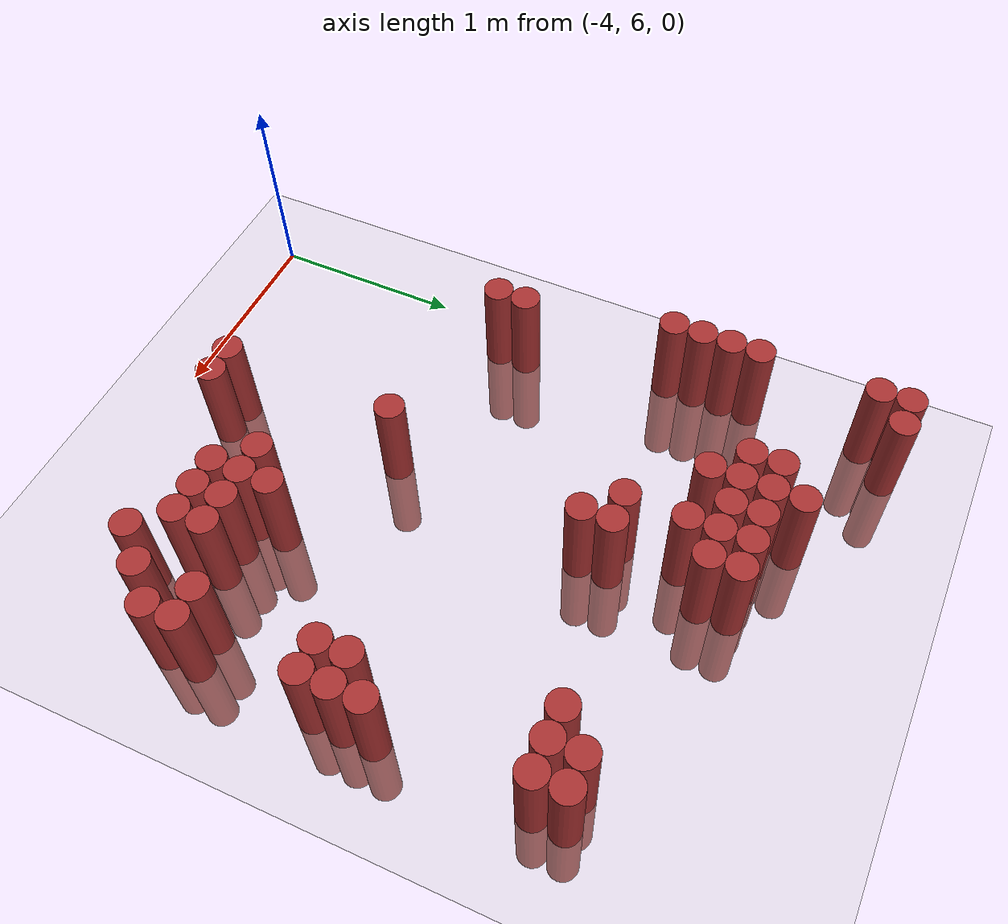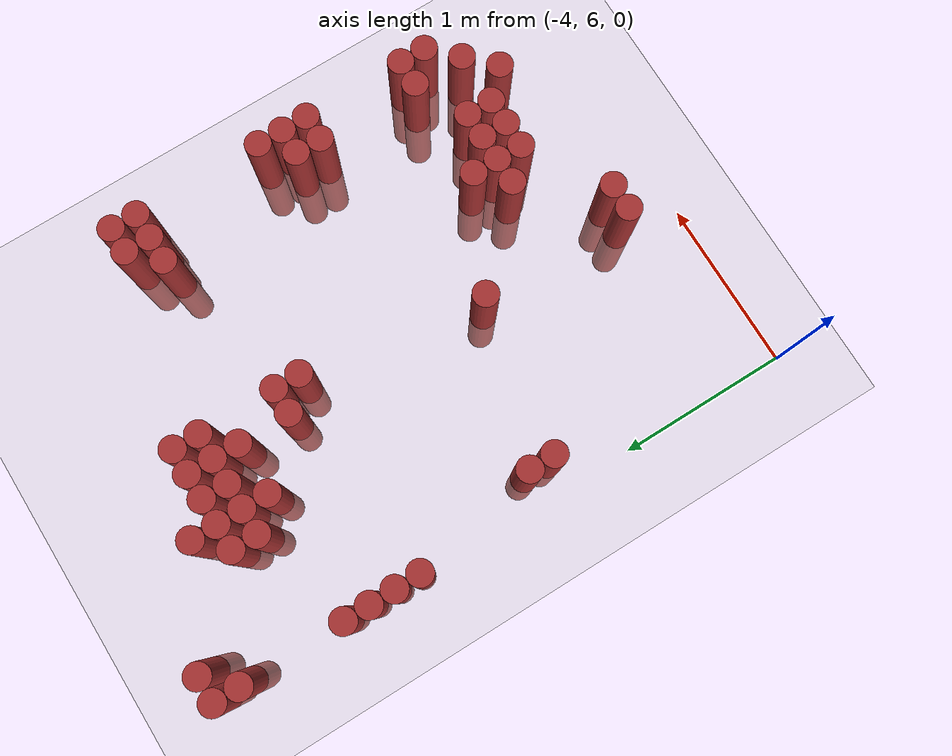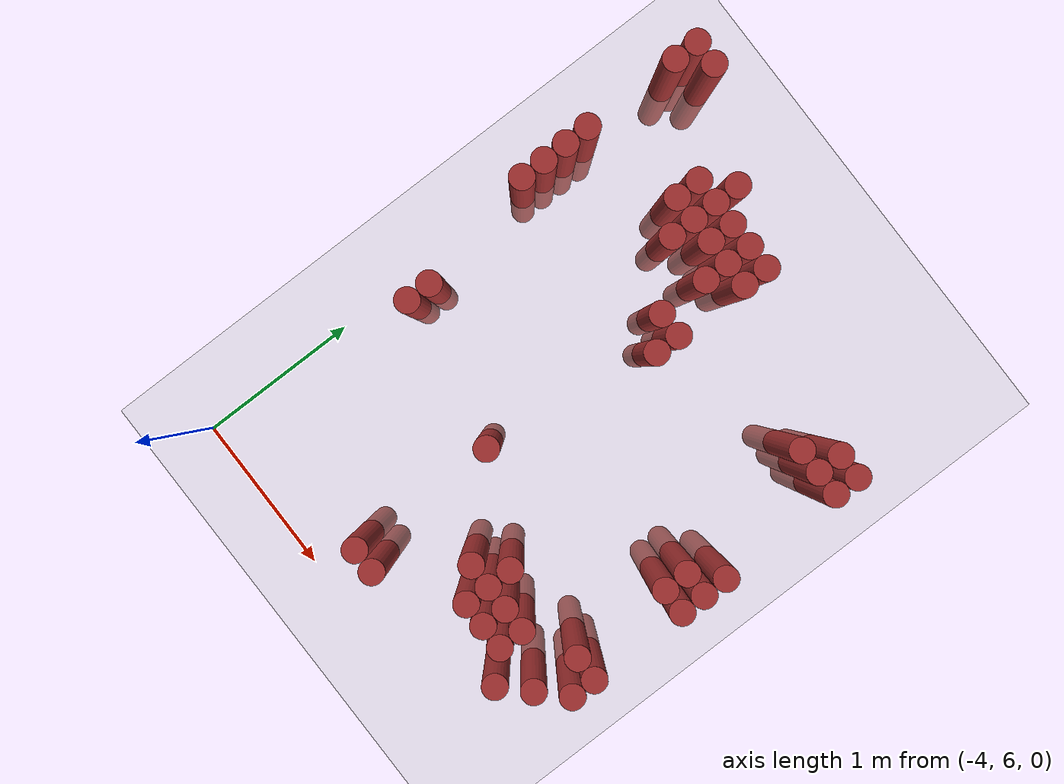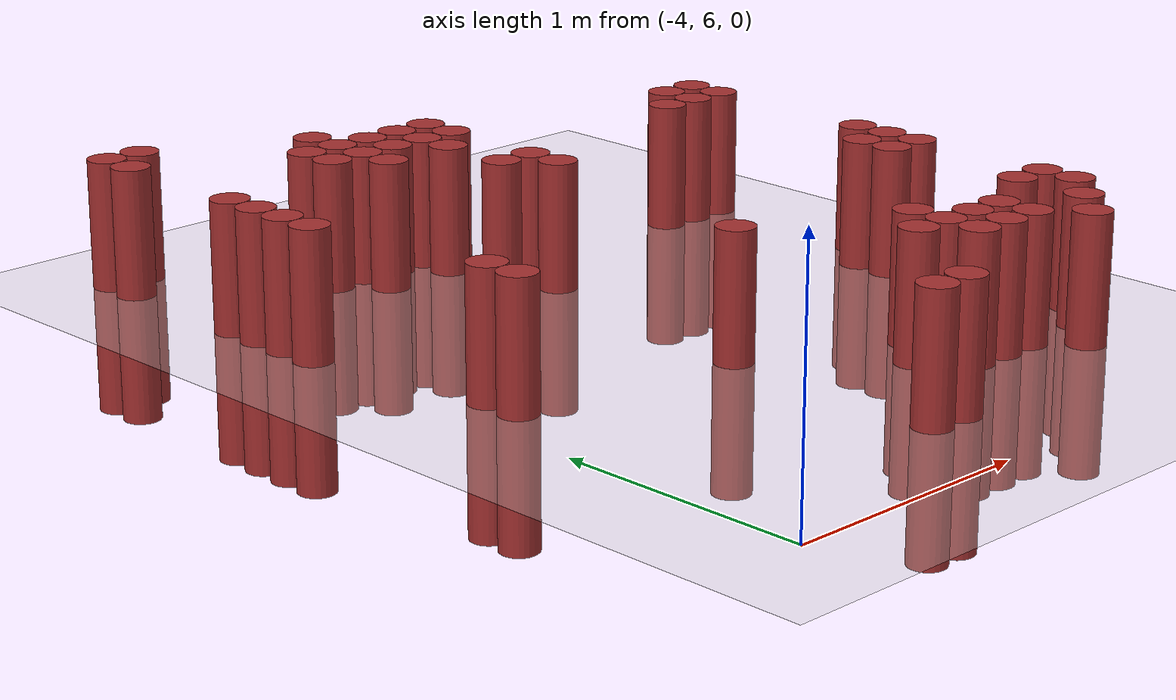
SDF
<sdf version="1.6">
 <world name="default">
  <model name="ground_plane">
   <static>1</static>
   <link name="link">
    <collision name="collision">
     <geometry><plane><normal>0 0 1</normal><size>100 100</size></plane></geometry>
     <surface><friction><ode><mu>100</mu><mu2>50</mu2></ode></friction></surface>
    </collision>
    <visual name="visual">
     <cast_shadows>0</cast_shadows>
     <geometry><plane><normal>0 0 1</normal><size>100 100</size></plane></geometry>
     <material>
      <script><uri>file://media/materials/scripts/gazebo.material</uri><name>Gazebo/Grey</name></script>
     </material>
    </visual>
   </link>
  </model>
  <model name="unit_cylinder_166">
   <static>1</static>
   <pose>-3.975000 8.325000 0.000000 0.000000 0.000000 0.000000</pose>
   <link name="link">
    <inertial>
     <mass>1</mass>
     <inertia><ixx>0.145833</ixx><ixy>0</ixy><ixz>0</ixz><iyy>0.145833</iyy><iyz>0</iyz><izz>0.125</izz></inertia>
    </inertial>
    <collision name="collision">
     <geometry><cylinder><radius>0.075000</radius><length>1</length></cylinder></geometry>
    </collision>
    <visual name="visual">
     <geometry><cylinder><radius>0.075000</radius><length>1</length></cylinder></geometry>
     <material>
      <ambient>0.648000 0.192000 0.192000 1</ambient>
      <diffuse>0.648000 0.192000 0.192000 1</diffuse>
     </material>
     <material>
      <script><name>Gazebo/Grey</name><uri>file://media/materials/scripts/gazebo.material</uri></script>
     </material>
    </visual>
   </link>
  </model>
  <model name="unit_cylinder_167">
   <static>1</static>
   <pose>-3.975000 8.475000 0.000000 0.000000 0.000000 0.000000</pose>
   <link name="link">
    <inertial>
     <mass>1</mass>
     <inertia><ixx>0.145833</ixx><ixy>0</ixy><ixz>0</ixz><iyy>0.145833</iyy><iyz>0</iyz><izz>0.125</izz></inertia>
    </inertial>
    <collision name="collision">
     <geometry><cylinder><radius>0.075000</radius><length>1</length></cylinder></geometry>
    </collision>
    <visual name="visual">
     <geometry><cylinder><radius>0.075000</radius><length>1</length></cylinder></geometry>
     <material>
      <ambient>0.648000 0.192000 0.192000 1</ambient>
      <diffuse>0.648000 0.192000 0.192000 1</diffuse>
     </material>
     <material>
      <script><name>Gazebo/Grey</name><uri>file://media/materials/scripts/gazebo.material</uri></script>
     </material>
    </visual>
   </link>
  </model>
  <model name="unit_cylinder_168">
   <static>1</static>
   <pose>-3.975000 8.625000 0.000000 0.000000 0.000000 0.000000</pose>
   <link name="link">
    <inertial>
     <mass>1</mass>
     <inertia><ixx>0.145833</ixx><ixy>0</ixy><ixz>0</ixz><iyy>0.145833</iyy><iyz>0</iyz><izz>0.125</izz></inertia>
    </inertial>
    <collision name="collision">
     <geometry><cylinder><radius>0.075000</radius><length>1</length></cylinder></geometry>
    </collision>
    <visual name="visual">
     <geometry><cylinder><radius>0.075000</radius><length>1</length></cylinder></geometry>
     <material>
      <ambient>0.648000 0.192000 0.192000 1</ambient>
      <diffuse>0.648000 0.192000 0.192000 1</diffuse>
     </material>
     <material>
      <script><name>Gazebo/Grey</name><uri>file://media/materials/scripts/gazebo.material</uri></script>
     </material>
    </visual>
   </link>
  </model>
  <model name="unit_cylinder_169">
   <static>1</static>
   <pose>-3.975000 8.775000 0.000000 0.000000 0.000000 0.000000</pose>
   <link name="link">
    <inertial>
     <mass>1</mass>
     <inertia><ixx>0.145833</ixx><ixy>0</ixy><ixz>0</ixz><iyy>0.145833</iyy><iyz>0</iyz><izz>0.125</izz></inertia>
    </inertial>
    <collision name="collision">
     <geometry><cylinder><radius>0.075000</radius><length>1</length></cylinder></geometry>
    </collision>
    <visual name="visual">
     <geometry><cylinder><radius>0.075000</radius><length>1</length></cylinder></geometry>
     <material>
      <ambient>0.648000 0.192000 0.192000 1</ambient>
      <diffuse>0.648000 0.192000 0.192000 1</diffuse>
     </material>
     <material>
      <script><name>Gazebo/Grey</name><uri>file://media/materials/scripts/gazebo.material</uri></script>
     </material>
    </visual>
   </link>
  </model>
  <model name="unit_cylinder_170">
   <static>1</static>
   <pose>-3.975000 9.375000 0.000000 0.000000 0.000000 0.000000</pose>
   <link name="link">
    <inertial>
     <mass>1</mass>
     <inertia><ixx>0.145833</ixx><ixy>0</ixy><ixz>0</ixz><iyy>0.145833</iyy><iyz>0</iyz><izz>0.125</izz></inertia>
    </inertial>
    <collision name="collision">
     <geometry><cylinder><radius>0.075000</radius><length>1</length></cylinder></geometry>
    </collision>
    <visual name="visual">
     <geometry><cylinder><radius>0.075000</radius><length>1</length></cylinder></geometry>
     <material>
      <ambient>0.648000 0.192000 0.192000 1</ambient>
      <diffuse>0.648000 0.192000 0.192000 1</diffuse>
     </material>
     <material>
      <script><name>Gazebo/Grey</name><uri>file://media/materials/scripts/gazebo.material</uri></script>
     </material>
    </visual>
   </link>
  </model>
  <model name="unit_cylinder_171">
   <static>1</static>
   <pose>-3.975000 9.525000 0.000000 0.000000 0.000000 0.000000</pose>
   <link name="link">
    <inertial>
     <mass>1</mass>
     <inertia><ixx>0.145833</ixx><ixy>0</ixy><ixz>0</ixz><iyy>0.145833</iyy><iyz>0</iyz><izz>0.125</izz></inertia>
    </inertial>
    <collision name="collision">
     <geometry><cylinder><radius>0.075000</radius><length>1</length></cylinder></geometry>
    </collision>
    <visual name="visual">
     <geometry><cylinder><radius>0.075000</radius><length>1</length></cylinder></geometry>
     <material>
      <ambient>0.648000 0.192000 0.192000 1</ambient>
      <diffuse>0.648000 0.192000 0.192000 1</diffuse>
     </material>
     <material>
      <script><name>Gazebo/Grey</name><uri>file://media/materials/scripts/gazebo.material</uri></script>
     </material>
    </visual>
   </link>
  </model>
  <model name="unit_cylinder_172">
   <static>1</static>
   <pose>-3.825000 7.425000 0.000000 0.000000 0.000000 0.000000</pose>
   <link name="link">
    <inertial>
     <mass>1</mass>
     <inertia><ixx>0.145833</ixx><ixy>0</ixy><ixz>0</ixz><iyy>0.145833</iyy><iyz>0</iyz><izz>0.125</izz></inertia>
    </inertial>
    <collision name="collision">
     <geometry><cylinder><radius>0.075000</radius><length>1</length></cylinder></geometry>
    </collision>
    <visual name="visual">
     <geometry><cylinder><radius>0.075000</radius><length>1</length></cylinder></geometry>
     <material>
      <ambient>0.648000 0.192000 0.192000 1</ambient>
      <diffuse>0.648000 0.192000 0.192000 1</diffuse>
     </material>
     <material>
      <script><name>Gazebo/Grey</name><uri>file://media/materials/scripts/gazebo.material</uri></script>
     </material>
    </visual>
   </link>
  </model>
  <model name="unit_cylinder_173">
   <static>1</static>
   <pose>-3.825000 7.575000 0.000000 0.000000 0.000000 0.000000</pose>
   <link name="link">
    <inertial>
     <mass>1</mass>
     <inertia><ixx>0.145833</ixx><ixy>0</ixy><ixz>0</ixz><iyy>0.145833</iyy><iyz>0</iyz><izz>0.125</izz></inertia>
    </inertial>
    <collision name="collision">
     <geometry><cylinder><radius>0.075000</radius><length>1</length></cylinder></geometry>
    </collision>
    <visual name="visual">
     <geometry><cylinder><radius>0.075000</radius><length>1</length></cylinder></geometry>
     <material>
      <ambient>0.648000 0.192000 0.192000 1</ambient>
      <diffuse>0.648000 0.192000 0.192000 1</diffuse>
     </material>
     <material>
      <script><name>Gazebo/Grey</name><uri>file://media/materials/scripts/gazebo.material</uri></script>
     </material>
    </visual>
   </link>
  </model>
  <model name="unit_cylinder_174">
   <static>1</static>
   <pose>-3.825000 9.525000 0.000000 0.000000 0.000000 0.000000</pose>
   <link name="link">
    <inertial>
     <mass>1</mass>
     <inertia><ixx>0.145833</ixx><ixy>0</ixy><ixz>0</ixz><iyy>0.145833</iyy><iyz>0</iyz><izz>0.125</izz></inertia>
    </inertial>
    <collision name="collision">
     <geometry><cylinder><radius>0.075000</radius><length>1</length></cylinder></geometry>
    </collision>
    <visual name="visual">
     <geometry><cylinder><radius>0.075000</radius><length>1</length></cylinder></geometry>
     <material>
      <ambient>0.648000 0.192000 0.192000 1</ambient>
      <diffuse>0.648000 0.192000 0.192000 1</diffuse>
     </material>
     <material>
      <script><name>Gazebo/Grey</name><uri>file://media/materials/scripts/gazebo.material</uri></script>
     </material>
    </visual>
   </link>
  </model>
  <model name="unit_cylinder_175">
   <static>1</static>
   <pose>-3.375000 8.925000 0.000000 0.000000 0.000000 0.000000</pose>
   <link name="link">
    <inertial>
     <mass>1</mass>
     <inertia><ixx>0.145833</ixx><ixy>0</ixy><ixz>0</ixz><iyy>0.145833</iyy><iyz>0</iyz><izz>0.125</izz></inertia>
    </inertial>
    <collision name="collision">
     <geometry><cylinder><radius>0.075000</radius><length>1</length></cylinder></geometry>
    </collision>
    <visual name="visual">
     <geometry><cylinder><radius>0.075000</radius><length>1</length></cylinder></geometry>
     <material>
      <ambient>0.648000 0.192000 0.192000 1</ambient>
      <diffuse>0.648000 0.192000 0.192000 1</diffuse>
     </material>
     <material>
      <script><name>Gazebo/Grey</name><uri>file://media/materials/scripts/gazebo.material</uri></script>
     </material>
    </visual>
   </link>
  </model>
  <model name="unit_cylinder_176">
   <static>1</static>
   <pose>-3.375000 9.075000 0.000000 0.000000 0.000000 0.000000</pose>
   <link name="link">
    <inertial>
     <mass>1</mass>
     <inertia><ixx>0.145833</ixx><ixy>0</ixy><ixz>0</ixz><iyy>0.145833</iyy><iyz>0</iyz><izz>0.125</izz></inertia>
    </inertial>
    <collision name="collision">
     <geometry><cylinder><radius>0.075000</radius><length>1</length></cylinder></geometry>
    </collision>
    <visual name="visual">
     <geometry><cylinder><radius>0.075000</radius><length>1</length></cylinder></geometry>
     <material>
      <ambient>0.648000 0.192000 0.192000 1</ambient>
      <diffuse>0.648000 0.192000 0.192000 1</diffuse>
     </material>
     <material>
      <script><name>Gazebo/Grey</name><uri>file://media/materials/scripts/gazebo.material</uri></script>
     </material>
    </visual>
   </link>
  </model>
  <model name="unit_cylinder_177">
   <static>1</static>
   <pose>-3.225000 8.775000 0.000000 0.000000 0.000000 0.000000</pose>
   <link name="link">
    <inertial>
     <mass>1</mass>
     <inertia><ixx>0.145833</ixx><ixy>0</ixy><ixz>0</ixz><iyy>0.145833</iyy><iyz>0</iyz><izz>0.125</izz></inertia>
    </inertial>
    <collision name="collision">
     <geometry><cylinder><radius>0.075000</radius><length>1</length></cylinder></geometry>
    </collision>
    <visual name="visual">
     <geometry><cylinder><radius>0.075000</radius><length>1</length></cylinder></geometry>
     <material>
      <ambient>0.648000 0.192000 0.192000 1</ambient>
      <diffuse>0.648000 0.192000 0.192000 1</diffuse>
     </material>
     <material>
      <script><name>Gazebo/Grey</name><uri>file://media/materials/scripts/gazebo.material</uri></script>
     </material>
    </visual>
   </link>
  </model>
  <model name="unit_cylinder_178">
   <static>1</static>
   <pose>-3.225000 8.925000 0.000000 0.000000 0.000000 0.000000</pose>
   <link name="link">
    <inertial>
     <mass>1</mass>
     <inertia><ixx>0.145833</ixx><ixy>0</ixy><ixz>0</ixz><iyy>0.145833</iyy><iyz>0</iyz><izz>0.125</izz></inertia>
    </inertial>
    <collision name="collision">
     <geometry><cylinder><radius>0.075000</radius><length>1</length></cylinder></geometry>
    </collision>
    <visual name="visual">
     <geometry><cylinder><radius>0.075000</radius><length>1</length></cylinder></geometry>
     <material>
      <ambient>0.648000 0.192000 0.192000 1</ambient>
      <diffuse>0.648000 0.192000 0.192000 1</diffuse>
     </material>
     <material>
      <script><name>Gazebo/Grey</name><uri>file://media/materials/scripts/gazebo.material</uri></script>
     </material>
    </visual>
   </link>
  </model>
  <model name="unit_cylinder_179">
   <static>1</static>
   <pose>-3.225000 9.075000 0.000000 0.000000 0.000000 0.000000</pose>
   <link name="link">
    <inertial>
     <mass>1</mass>
     <inertia><ixx>0.145833</ixx><ixy>0</ixy><ixz>0</ixz><iyy>0.145833</iyy><iyz>0</iyz><izz>0.125</izz></inertia>
    </inertial>
    <collision name="collision">
     <geometry><cylinder><radius>0.075000</radius><length>1</length></cylinder></geometry>
    </collision>
    <visual name="visual">
     <geometry><cylinder><radius>0.075000</radius><length>1</length></cylinder></geometry>
     <material>
      <ambient>0.648000 0.192000 0.192000 1</ambient>
      <diffuse>0.648000 0.192000 0.192000 1</diffuse>
     </material>
     <material>
      <script><name>Gazebo/Grey</name><uri>file://media/materials/scripts/gazebo.material</uri></script>
     </material>
    </visual>
   </link>
  </model>
  <model name="unit_cylinder_180">
   <static>1</static>
   <pose>-3.225000 9.225000 0.000000 0.000000 0.000000 0.000000</pose>
   <link name="link">
    <inertial>
     <mass>1</mass>
     <inertia><ixx>0.145833</ixx><ixy>0</ixy><ixz>0</ixz><iyy>0.145833</iyy><iyz>0</iyz><izz>0.125</izz></inertia>
    </inertial>
    <collision name="collision">
     <geometry><cylinder><radius>0.075000</radius><length>1</length></cylinder></geometry>
    </collision>
    <visual name="visual">
     <geometry><cylinder><radius>0.075000</radius><length>1</length></cylinder></geometry>
     <material>
      <ambient>0.648000 0.192000 0.192000 1</ambient>
      <diffuse>0.648000 0.192000 0.192000 1</diffuse>
     </material>
     <material>
      <script><name>Gazebo/Grey</name><uri>file://media/materials/scripts/gazebo.material</uri></script>
     </material>
    </visual>
   </link>
  </model>
  <model name="unit_cylinder_182">
   <static>1</static>
   <pose>-3.075000 8.925000 0.000000 0.000000 0.000000 0.000000</pose>
   <link name="link">
    <inertial>
     <mass>1</mass>
     <inertia><ixx>0.145833</ixx><ixy>0</ixy><ixz>0</ixz><iyy>0.145833</iyy><iyz>0</iyz><izz>0.125</izz></inertia>
    </inertial>
    <collision name="collision">
     <geometry><cylinder><radius>0.075000</radius><length>1</length></cylinder></geometry>
    </collision>
    <visual name="visual">
     <geometry><cylinder><radius>0.075000</radius><length>1</length></cylinder></geometry>
     <material>
      <ambient>0.648000 0.192000 0.192000 1</ambient>
      <diffuse>0.648000 0.192000 0.192000 1</diffuse>
     </material>
     <material>
      <script><name>Gazebo/Grey</name><uri>file://media/materials/scripts/gazebo.material</uri></script>
     </material>
    </visual>
   </link>
  </model>
  <model name="unit_cylinder_183">
   <static>1</static>
   <pose>-3.075000 9.075000 0.000000 0.000000 0.000000 0.000000</pose>
   <link name="link">
    <inertial>
     <mass>1</mass>
     <inertia><ixx>0.145833</ixx><ixy>0</ixy><ixz>0</ixz><iyy>0.145833</iyy><iyz>0</iyz><izz>0.125</izz></inertia>
    </inertial>
    <collision name="collision">
     <geometry><cylinder><radius>0.075000</radius><length>1</length></cylinder></geometry>
    </collision>
    <visual name="visual">
     <geometry><cylinder><radius>0.075000</radius><length>1</length></cylinder></geometry>
     <material>
      <ambient>0.648000 0.192000 0.192000 1</ambient>
      <diffuse>0.648000 0.192000 0.192000 1</diffuse>
     </material>
     <material>
      <script><name>Gazebo/Grey</name><uri>file://media/materials/scripts/gazebo.material</uri></script>
     </material>
    </visual>
   </link>
  </model>
  <model name="unit_cylinder_188">
   <static>1</static>
   <pose>-2.925000 6.375000 0.000000 0.000000 0.000000 0.000000</pose>
   <link name="link">
    <inertial>
     <mass>1</mass>
     <inertia><ixx>0.145833</ixx><ixy>0</ixy><ixz>0</ixz><iyy>0.145833</iyy><iyz>0</iyz><izz>0.125</izz></inertia>
    </inertial>
    <collision name="collision">
     <geometry><cylinder><radius>0.075000</radius><length>1</length></cylinder></geometry>
    </collision>
    <visual name="visual">
     <geometry><cylinder><radius>0.075000</radius><length>1</length></cylinder></geometry>
     <material>
      <ambient>0.648000 0.192000 0.192000 1</ambient>
      <diffuse>0.648000 0.192000 0.192000 1</diffuse>
     </material>
     <material>
      <script><name>Gazebo/Grey</name><uri>file://media/materials/scripts/gazebo.material</uri></script>
     </material>
    </visual>
   </link>
  </model>
  <model name="unit_cylinder_189">
   <static>1</static>
   <pose>-2.925000 7.275000 0.000000 0.000000 0.000000 0.000000</pose>
   <link name="link">
    <inertial>
     <mass>1</mass>
     <inertia><ixx>0.145833</ixx><ixy>0</ixy><ixz>0</ixz><iyy>0.145833</iyy><iyz>0</iyz><izz>0.125</izz></inertia>
    </inertial>
    <collision name="collision">
     <geometry><cylinder><radius>0.075000</radius><length>1</length></cylinder></geometry>
    </collision>
    <visual name="visual">
     <geometry><cylinder><radius>0.075000</radius><length>1</length></cylinder></geometry>
     <material>
      <ambient>0.648000 0.192000 0.192000 1</ambient>
      <diffuse>0.648000 0.192000 0.192000 1</diffuse>
     </material>
     <material>
      <script><name>Gazebo/Grey</name><uri>file://media/materials/scripts/gazebo.material</uri></script>
     </material>
    </visual>
   </link>
  </model>
  <model name="unit_cylinder_190">
   <static>1</static>
   <pose>-2.925000 8.475000 0.000000 0.000000 0.000000 0.000000</pose>
   <link name="link">
    <inertial>
     <mass>1</mass>
     <inertia><ixx>0.145833</ixx><ixy>0</ixy><ixz>0</ixz><iyy>0.145833</iyy><iyz>0</iyz><izz>0.125</izz></inertia>
    </inertial>
    <collision name="collision">
     <geometry><cylinder><radius>0.075000</radius><length>1</length></cylinder></geometry>
    </collision>
    <visual name="visual">
     <geometry><cylinder><radius>0.075000</radius><length>1</length></cylinder></geometry>
     <material>
      <ambient>0.648000 0.192000 0.192000 1</ambient>
      <diffuse>0.648000 0.192000 0.192000 1</diffuse>
     </material>
     <material>
      <script><name>Gazebo/Grey</name><uri>file://media/materials/scripts/gazebo.material</uri></script>
     </material>
    </visual>
   </link>
  </model>
  <model name="unit_cylinder_191">
   <static>1</static>
   <pose>-2.925000 8.775000 0.000000 0.000000 0.000000 0.000000</pose>
   <link name="link">
    <inertial>
     <mass>1</mass>
     <inertia><ixx>0.145833</ixx><ixy>0</ixy><ixz>0</ixz><iyy>0.145833</iyy><iyz>0</iyz><izz>0.125</izz></inertia>
    </inertial>
    <collision name="collision">
     <geometry><cylinder><radius>0.075000</radius><length>1</length></cylinder></geometry>
    </collision>
    <visual name="visual">
     <geometry><cylinder><radius>0.075000</radius><length>1</length></cylinder></geometry>
     <material>
      <ambient>0.648000 0.192000 0.192000 1</ambient>
      <diffuse>0.648000 0.192000 0.192000 1</diffuse>
     </material>
     <material>
      <script><name>Gazebo/Grey</name><uri>file://media/materials/scripts/gazebo.material</uri></script>
     </material>
    </visual>
   </link>
  </model>
  <model name="unit_cylinder_192">
   <static>1</static>
   <pose>-2.925000 8.925000 0.000000 0.000000 0.000000 0.000000</pose>
   <link name="link">
    <inertial>
     <mass>1</mass>
     <inertia><ixx>0.145833</ixx><ixy>0</ixy><ixz>0</ixz><iyy>0.145833</iyy><iyz>0</iyz><izz>0.125</izz></inertia>
    </inertial>
    <collision name="collision">
     <geometry><cylinder><radius>0.075000</radius><length>1</length></cylinder></geometry>
    </collision>
    <visual name="visual">
     <geometry><cylinder><radius>0.075000</radius><length>1</length></cylinder></geometry>
     <material>
      <ambient>0.648000 0.192000 0.192000 1</ambient>
      <diffuse>0.648000 0.192000 0.192000 1</diffuse>
     </material>
     <material>
      <script><name>Gazebo/Grey</name><uri>file://media/materials/scripts/gazebo.material</uri></script>
     </material>
    </visual>
   </link>
  </model>
  <model name="unit_cylinder_193">
   <static>1</static>
   <pose>-2.925000 9.075000 0.000000 0.000000 0.000000 0.000000</pose>
   <link name="link">
    <inertial>
     <mass>1</mass>
     <inertia><ixx>0.145833</ixx><ixy>0</ixy><ixz>0</ixz><iyy>0.145833</iyy><iyz>0</iyz><izz>0.125</izz></inertia>
    </inertial>
    <collision name="collision">
     <geometry><cylinder><radius>0.075000</radius><length>1</length></cylinder></geometry>
    </collision>
    <visual name="visual">
     <geometry><cylinder><radius>0.075000</radius><length>1</length></cylinder></geometry>
     <material>
      <ambient>0.648000 0.192000 0.192000 1</ambient>
      <diffuse>0.648000 0.192000 0.192000 1</diffuse>
     </material>
     <material>
      <script><name>Gazebo/Grey</name><uri>file://media/materials/scripts/gazebo.material</uri></script>
     </material>
    </visual>
   </link>
  </model>
  <model name="unit_cylinder_198">
   <static>1</static>
   <pose>-2.775000 6.375000 0.000000 0.000000 0.000000 0.000000</pose>
   <link name="link">
    <inertial>
     <mass>1</mass>
     <inertia><ixx>0.145833</ixx><ixy>0</ixy><ixz>0</ixz><iyy>0.145833</iyy><iyz>0</iyz><izz>0.125</izz></inertia>
    </inertial>
    <collision name="collision">
     <geometry><cylinder><radius>0.075000</radius><length>1</length></cylinder></geometry>
    </collision>
    <visual name="visual">
     <geometry><cylinder><radius>0.075000</radius><length>1</length></cylinder></geometry>
     <material>
      <ambient>0.648000 0.192000 0.192000 1</ambient>
      <diffuse>0.648000 0.192000 0.192000 1</diffuse>
     </material>
     <material>
      <script><name>Gazebo/Grey</name><uri>file://media/materials/scripts/gazebo.material</uri></script>
     </material>
    </visual>
   </link>
  </model>
  <model name="unit_cylinder_199">
   <static>1</static>
   <pose>-2.775000 8.325000 0.000000 0.000000 0.000000 0.000000</pose>
   <link name="link">
    <inertial>
     <mass>1</mass>
     <inertia><ixx>0.145833</ixx><ixy>0</ixy><ixz>0</ixz><iyy>0.145833</iyy><iyz>0</iyz><izz>0.125</izz></inertia>
    </inertial>
    <collision name="collision">
     <geometry><cylinder><radius>0.075000</radius><length>1</length></cylinder></geometry>
    </collision>
    <visual name="visual">
     <geometry><cylinder><radius>0.075000</radius><length>1</length></cylinder></geometry>
     <material>
      <ambient>0.648000 0.192000 0.192000 1</ambient>
      <diffuse>0.648000 0.192000 0.192000 1</diffuse>
     </material>
     <material>
      <script><name>Gazebo/Grey</name><uri>file://media/materials/scripts/gazebo.material</uri></script>
     </material>
    </visual>
   </link>
  </model>
  <model name="unit_cylinder_200">
   <static>1</static>
   <pose>-2.775000 8.475000 0.000000 0.000000 0.000000 0.000000</pose>
   <link name="link">
    <inertial>
     <mass>1</mass>
     <inertia><ixx>0.145833</ixx><ixy>0</ixy><ixz>0</ixz><iyy>0.145833</iyy><iyz>0</iyz><izz>0.125</izz></inertia>
    </inertial>
    <collision name="collision">
     <geometry><cylinder><radius>0.075000</radius><length>1</length></cylinder></geometry>
    </collision>
    <visual name="visual">
     <geometry><cylinder><radius>0.075000</radius><length>1</length></cylinder></geometry>
     <material>
      <ambient>0.648000 0.192000 0.192000 1</ambient>
      <diffuse>0.648000 0.192000 0.192000 1</diffuse>
     </material>
     <material>
      <script><name>Gazebo/Grey</name><uri>file://media/materials/scripts/gazebo.material</uri></script>
     </material>
    </visual>
   </link>
  </model>
  <model name="unit_cylinder_201">
   <static>1</static>
   <pose>-2.775000 8.925000 0.000000 0.000000 0.000000 0.000000</pose>
   <link name="link">
    <inertial>
     <mass>1</mass>
     <inertia><ixx>0.145833</ixx><ixy>0</ixy><ixz>0</ixz><iyy>0.145833</iyy><iyz>0</iyz><izz>0.125</izz></inertia>
    </inertial>
    <collision name="collision">
     <geometry><cylinder><radius>0.075000</radius><length>1</length></cylinder></geometry>
    </collision>
    <visual name="visual">
     <geometry><cylinder><radius>0.075000</radius><length>1</length></cylinder></geometry>
     <material>
      <ambient>0.648000 0.192000 0.192000 1</ambient>
      <diffuse>0.648000 0.192000 0.192000 1</diffuse>
     </material>
     <material>
      <script><name>Gazebo/Grey</name><uri>file://media/materials/scripts/gazebo.material</uri></script>
     </material>
    </visual>
   </link>
  </model>
  <model name="unit_cylinder_202">
   <static>1</static>
   <pose>-2.775000 9.075000 0.000000 0.000000 0.000000 0.000000</pose>
   <link name="link">
    <inertial>
     <mass>1</mass>
     <inertia><ixx>0.145833</ixx><ixy>0</ixy><ixz>0</ixz><iyy>0.145833</iyy><iyz>0</iyz><izz>0.125</izz></inertia>
    </inertial>
    <collision name="collision">
     <geometry><cylinder><radius>0.075000</radius><length>1</length></cylinder></geometry>
    </collision>
    <visual name="visual">
     <geometry><cylinder><radius>0.075000</radius><length>1</length></cylinder></geometry>
     <material>
      <ambient>0.648000 0.192000 0.192000 1</ambient>
      <diffuse>0.648000 0.192000 0.192000 1</diffuse>
     </material>
     <material>
      <script><name>Gazebo/Grey</name><uri>file://media/materials/scripts/gazebo.material</uri></script>
     </material>
    </visual>
   </link>
  </model>
  <model name="unit_cylinder_205">
   <static>1</static>
   <pose>-2.475000 6.825000 0.000000 0.000000 0.000000 0.000000</pose>
   <link name="link">
    <inertial>
     <mass>1</mass>
     <inertia><ixx>0.145833</ixx><ixy>0</ixy><ixz>0</ixz><iyy>0.145833</iyy><iyz>0</iyz><izz>0.125</izz></inertia>
    </inertial>
    <collision name="collision">
     <geometry><cylinder><radius>0.075000</radius><length>1</length></cylinder></geometry>
    </collision>
    <visual name="visual">
     <geometry><cylinder><radius>0.075000</radius><length>1</length></cylinder></geometry>
     <material>
      <ambient>0.648000 0.192000 0.192000 1</ambient>
      <diffuse>0.648000 0.192000 0.192000 1</diffuse>
     </material>
     <material>
      <script><name>Gazebo/Grey</name><uri>file://media/materials/scripts/gazebo.material</uri></script>
     </material>
    </visual>
   </link>
  </model>
  <model name="unit_cylinder_208">
   <static>1</static>
   <pose>-2.325000 6.675000 0.000000 0.000000 0.000000 0.000000</pose>
   <link name="link">
    <inertial>
     <mass>1</mass>
     <inertia><ixx>0.145833</ixx><ixy>0</ixy><ixz>0</ixz><iyy>0.145833</iyy><iyz>0</iyz><izz>0.125</izz></inertia>
    </inertial>
    <collision name="collision">
     <geometry><cylinder><radius>0.075000</radius><length>1</length></cylinder></geometry>
    </collision>
    <visual name="visual">
     <geometry><cylinder><radius>0.075000</radius><length>1</length></cylinder></geometry>
     <material>
      <ambient>0.648000 0.192000 0.192000 1</ambient>
      <diffuse>0.648000 0.192000 0.192000 1</diffuse>
     </material>
     <material>
      <script><name>Gazebo/Grey</name><uri>file://media/materials/scripts/gazebo.material</uri></script>
     </material>
    </visual>
   </link>
  </model>
  <model name="unit_cylinder_209">
   <static>1</static>
   <pose>-2.325000 6.825000 0.000000 0.000000 0.000000 0.000000</pose>
   <link name="link">
    <inertial>
     <mass>1</mass>
     <inertia><ixx>0.145833</ixx><ixy>0</ixy><ixz>0</ixz><iyy>0.145833</iyy><iyz>0</iyz><izz>0.125</izz></inertia>
    </inertial>
    <collision name="collision">
     <geometry><cylinder><radius>0.075000</radius><length>1</length></cylinder></geometry>
    </collision>
    <visual name="visual">
     <geometry><cylinder><radius>0.075000</radius><length>1</length></cylinder></geometry>
     <material>
      <ambient>0.648000 0.192000 0.192000 1</ambient>
      <diffuse>0.648000 0.192000 0.192000 1</diffuse>
     </material>
     <material>
      <script><name>Gazebo/Grey</name><uri>file://media/materials/scripts/gazebo.material</uri></script>
     </material>
    </visual>
   </link>
  </model>
  <model name="unit_cylinder_210">
   <static>1</static>
   <pose>-2.325000 6.975000 0.000000 0.000000 0.000000 0.000000</pose>
   <link name="link">
    <inertial>
     <mass>1</mass>
     <inertia><ixx>0.145833</ixx><ixy>0</ixy><ixz>0</ixz><iyy>0.145833</iyy><iyz>0</iyz><izz>0.125</izz></inertia>
    </inertial>
    <collision name="collision">
     <geometry><cylinder><radius>0.075000</radius><length>1</length></cylinder></geometry>
    </collision>
    <visual name="visual">
     <geometry><cylinder><radius>0.075000</radius><length>1</length></cylinder></geometry>
     <material>
      <ambient>0.648000 0.192000 0.192000 1</ambient>
      <diffuse>0.648000 0.192000 0.192000 1</diffuse>
     </material>
     <material>
      <script><name>Gazebo/Grey</name><uri>file://media/materials/scripts/gazebo.material</uri></script>
     </material>
    </visual>
   </link>
  </model>
  <model name="unit_cylinder_214">
   <static>1</static>
   <pose>-2.175000 6.675000 0.000000 0.000000 0.000000 0.000000</pose>
   <link name="link">
    <inertial>
     <mass>1</mass>
     <inertia><ixx>0.145833</ixx><ixy>0</ixy><ixz>0</ixz><iyy>0.145833</iyy><iyz>0</iyz><izz>0.125</izz></inertia>
    </inertial>
    <collision name="collision">
     <geometry><cylinder><radius>0.075000</radius><length>1</length></cylinder></geometry>
    </collision>
    <visual name="visual">
     <geometry><cylinder><radius>0.075000</radius><length>1</length></cylinder></geometry>
     <material>
      <ambient>0.648000 0.192000 0.192000 1</ambient>
      <diffuse>0.648000 0.192000 0.192000 1</diffuse>
     </material>
     <material>
      <script><name>Gazebo/Grey</name><uri>file://media/materials/scripts/gazebo.material</uri></script>
     </material>
    </visual>
   </link>
  </model>
  <model name="unit_cylinder_215">
   <static>1</static>
   <pose>-2.175000 6.825000 0.000000 0.000000 0.000000 0.000000</pose>
   <link name="link">
    <inertial>
     <mass>1</mass>
     <inertia><ixx>0.145833</ixx><ixy>0</ixy><ixz>0</ixz><iyy>0.145833</iyy><iyz>0</iyz><izz>0.125</izz></inertia>
    </inertial>
    <collision name="collision">
     <geometry><cylinder><radius>0.075000</radius><length>1</length></cylinder></geometry>
    </collision>
    <visual name="visual">
     <geometry><cylinder><radius>0.075000</radius><length>1</length></cylinder></geometry>
     <material>
      <ambient>0.648000 0.192000 0.192000 1</ambient>
      <diffuse>0.648000 0.192000 0.192000 1</diffuse>
     </material>
     <material>
      <script><name>Gazebo/Grey</name><uri>file://media/materials/scripts/gazebo.material</uri></script>
     </material>
    </visual>
   </link>
  </model>
  <model name="unit_cylinder_219">
   <static>1</static>
   <pose>-2.025000 6.675000 0.000000 0.000000 0.000000 0.000000</pose>
   <link name="link">
    <inertial>
     <mass>1</mass>
     <inertia><ixx>0.145833</ixx><ixy>0</ixy><ixz>0</ixz><iyy>0.145833</iyy><iyz>0</iyz><izz>0.125</izz></inertia>
    </inertial>
    <collision name="collision">
     <geometry><cylinder><radius>0.075000</radius><length>1</length></cylinder></geometry>
    </collision>
    <visual name="visual">
     <geometry><cylinder><radius>0.075000</radius><length>1</length></cylinder></geometry>
     <material>
      <ambient>0.648000 0.192000 0.192000 1</ambient>
      <diffuse>0.648000 0.192000 0.192000 1</diffuse>
     </material>
     <material>
      <script><name>Gazebo/Grey</name><uri>file://media/materials/scripts/gazebo.material</uri></script>
     </material>
    </visual>
   </link>
  </model>
  <model name="unit_cylinder_220">
   <static>1</static>
   <pose>-2.025000 6.825000 0.000000 0.000000 0.000000 0.000000</pose>
   <link name="link">
    <inertial>
     <mass>1</mass>
     <inertia><ixx>0.145833</ixx><ixy>0</ixy><ixz>0</ixz><iyy>0.145833</iyy><iyz>0</iyz><izz>0.125</izz></inertia>
    </inertial>
    <collision name="collision">
     <geometry><cylinder><radius>0.075000</radius><length>1</length></cylinder></geometry>
    </collision>
    <visual name="visual">
     <geometry><cylinder><radius>0.075000</radius><length>1</length></cylinder></geometry>
     <material>
      <ambient>0.648000 0.192000 0.192000 1</ambient>
      <diffuse>0.648000 0.192000 0.192000 1</diffuse>
     </material>
     <material>
      <script><name>Gazebo/Grey</name><uri>file://media/materials/scripts/gazebo.material</uri></script>
     </material>
    </visual>
   </link>
  </model>
  <model name="unit_cylinder_223">
   <static>1</static>
   <pose>-1.875000 6.525000 0.000000 0.000000 0.000000 0.000000</pose>
   <link name="link">
    <inertial>
     <mass>1</mass>
     <inertia><ixx>0.145833</ixx><ixy>0</ixy><ixz>0</ixz><iyy>0.145833</iyy><iyz>0</iyz><izz>0.125</izz></inertia>
    </inertial>
    <collision name="collision">
     <geometry><cylinder><radius>0.075000</radius><length>1</length></cylinder></geometry>
    </collision>
    <visual name="visual">
     <geometry><cylinder><radius>0.075000</radius><length>1</length></cylinder></geometry>
     <material>
      <ambient>0.648000 0.192000 0.192000 1</ambient>
      <diffuse>0.648000 0.192000 0.192000 1</diffuse>
     </material>
     <material>
      <script><name>Gazebo/Grey</name><uri>file://media/materials/scripts/gazebo.material</uri></script>
     </material>
    </visual>
   </link>
  </model>
  <model name="unit_cylinder_224">
   <static>1</static>
   <pose>-1.875000 8.625000 0.000000 0.000000 0.000000 0.000000</pose>
   <link name="link">
    <inertial>
     <mass>1</mass>
     <inertia><ixx>0.145833</ixx><ixy>0</ixy><ixz>0</ixz><iyy>0.145833</iyy><iyz>0</iyz><izz>0.125</izz></inertia>
    </inertial>
    <collision name="collision">
     <geometry><cylinder><radius>0.075000</radius><length>1</length></cylinder></geometry>
    </collision>
    <visual name="visual">
     <geometry><cylinder><radius>0.075000</radius><length>1</length></cylinder></geometry>
     <material>
      <ambient>0.648000 0.192000 0.192000 1</ambient>
      <diffuse>0.648000 0.192000 0.192000 1</diffuse>
     </material>
     <material>
      <script><name>Gazebo/Grey</name><uri>file://media/materials/scripts/gazebo.material</uri></script>
     </material>
    </visual>
   </link>
  </model>
  <model name="unit_cylinder_229">
   <static>1</static>
   <pose>-1.725000 6.675000 0.000000 0.000000 0.000000 0.000000</pose>
   <link name="link">
    <inertial>
     <mass>1</mass>
     <inertia><ixx>0.145833</ixx><ixy>0</ixy><ixz>0</ixz><iyy>0.145833</iyy><iyz>0</iyz><izz>0.125</izz></inertia>
    </inertial>
    <collision name="collision">
     <geometry><cylinder><radius>0.075000</radius><length>1</length></cylinder></geometry>
    </collision>
    <visual name="visual">
     <geometry><cylinder><radius>0.075000</radius><length>1</length></cylinder></geometry>
     <material>
      <ambient>0.648000 0.192000 0.192000 1</ambient>
      <diffuse>0.648000 0.192000 0.192000 1</diffuse>
     </material>
     <material>
      <script><name>Gazebo/Grey</name><uri>file://media/materials/scripts/gazebo.material</uri></script>
     </material>
    </visual>
   </link>
  </model>
  <model name="unit_cylinder_230">
   <static>1</static>
   <pose>-1.725000 6.975000 0.000000 0.000000 0.000000 0.000000</pose>
   <link name="link">
    <inertial>
     <mass>1</mass>
     <inertia><ixx>0.145833</ixx><ixy>0</ixy><ixz>0</ixz><iyy>0.145833</iyy><iyz>0</iyz><izz>0.125</izz></inertia>
    </inertial>
    <collision name="collision">
     <geometry><cylinder><radius>0.075000</radius><length>1</length></cylinder></geometry>
    </collision>
    <visual name="visual">
     <geometry><cylinder><radius>0.075000</radius><length>1</length></cylinder></geometry>
     <material>
      <ambient>0.648000 0.192000 0.192000 1</ambient>
      <diffuse>0.648000 0.192000 0.192000 1</diffuse>
     </material>
     <material>
      <script><name>Gazebo/Grey</name><uri>file://media/materials/scripts/gazebo.material</uri></script>
     </material>
    </visual>
   </link>
  </model>
  <model name="unit_cylinder_231">
   <static>1</static>
   <pose>-1.725000 7.575000 0.000000 0.000000 0.000000 0.000000</pose>
   <link name="link">
    <inertial>
     <mass>1</mass>
     <inertia><ixx>0.145833</ixx><ixy>0</ixy><ixz>0</ixz><iyy>0.145833</iyy><iyz>0</iyz><izz>0.125</izz></inertia>
    </inertial>
    <collision name="collision">
     <geometry><cylinder><radius>0.075000</radius><length>1</length></cylinder></geometry>
    </collision>
    <visual name="visual">
     <geometry><cylinder><radius>0.075000</radius><length>1</length></cylinder></geometry>
     <material>
      <ambient>0.648000 0.192000 0.192000 1</ambient>
      <diffuse>0.648000 0.192000 0.192000 1</diffuse>
     </material>
     <material>
      <script><name>Gazebo/Grey</name><uri>file://media/materials/scripts/gazebo.material</uri></script>
     </material>
    </visual>
   </link>
  </model>
  <model name="unit_cylinder_232">
   <static>1</static>
   <pose>-1.725000 7.725000 0.000000 0.000000 0.000000 0.000000</pose>
   <link name="link">
    <inertial>
     <mass>1</mass>
     <inertia><ixx>0.145833</ixx><ixy>0</ixy><ixz>0</ixz><iyy>0.145833</iyy><iyz>0</iyz><izz>0.125</izz></inertia>
    </inertial>
    <collision name="collision">
     <geometry><cylinder><radius>0.075000</radius><length>1</length></cylinder></geometry>
    </collision>
    <visual name="visual">
     <geometry><cylinder><radius>0.075000</radius><length>1</length></cylinder></geometry>
     <material>
      <ambient>0.648000 0.192000 0.192000 1</ambient>
      <diffuse>0.648000 0.192000 0.192000 1</diffuse>
     </material>
     <material>
      <script><name>Gazebo/Grey</name><uri>file://media/materials/scripts/gazebo.material</uri></script>
     </material>
    </visual>
   </link>
  </model>
  <model name="unit_cylinder_233">
   <static>1</static>
   <pose>-1.725000 8.625000 0.000000 0.000000 0.000000 0.000000</pose>
   <link name="link">
    <inertial>
     <mass>1</mass>
     <inertia><ixx>0.145833</ixx><ixy>0</ixy><ixz>0</ixz><iyy>0.145833</iyy><iyz>0</iyz><izz>0.125</izz></inertia>
    </inertial>
    <collision name="collision">
     <geometry><cylinder><radius>0.075000</radius><length>1</length></cylinder></geometry>
    </collision>
    <visual name="visual">
     <geometry><cylinder><radius>0.075000</radius><length>1</length></cylinder></geometry>
     <material>
      <ambient>0.648000 0.192000 0.192000 1</ambient>
      <diffuse>0.648000 0.192000 0.192000 1</diffuse>
     </material>
     <material>
      <script><name>Gazebo/Grey</name><uri>file://media/materials/scripts/gazebo.material</uri></script>
     </material>
    </visual>
   </link>
  </model>
  <model name="unit_cylinder_234">
   <static>1</static>
   <pose>-1.725000 8.775000 0.000000 0.000000 0.000000 0.000000</pose>
   <link name="link">
    <inertial>
     <mass>1</mass>
     <inertia><ixx>0.145833</ixx><ixy>0</ixy><ixz>0</ixz><iyy>0.145833</iyy><iyz>0</iyz><izz>0.125</izz></inertia>
    </inertial>
    <collision name="collision">
     <geometry><cylinder><radius>0.075000</radius><length>1</length></cylinder></geometry>
    </collision>
    <visual name="visual">
     <geometry><cylinder><radius>0.075000</radius><length>1</length></cylinder></geometry>
     <material>
      <ambient>0.648000 0.192000 0.192000 1</ambient>
      <diffuse>0.648000 0.192000 0.192000 1</diffuse>
     </material>
     <material>
      <script><name>Gazebo/Grey</name><uri>file://media/materials/scripts/gazebo.material</uri></script>
     </material>
    </visual>
   </link>
  </model>
  <model name="unit_cylinder_236">
   <static>1</static>
   <pose>-1.575000 6.825000 0.000000 0.000000 0.000000 0.000000</pose>
   <link name="link">
    <inertial>
     <mass>1</mass>
     <inertia><ixx>0.145833</ixx><ixy>0</ixy><ixz>0</ixz><iyy>0.145833</iyy><iyz>0</iyz><izz>0.125</izz></inertia>
    </inertial>
    <collision name="collision">
     <geometry><cylinder><radius>0.075000</radius><length>1</length></cylinder></geometry>
    </collision>
    <visual name="visual">
     <geometry><cylinder><radius>0.075000</radius><length>1</length></cylinder></geometry>
     <material>
      <ambient>0.648000 0.192000 0.192000 1</ambient>
      <diffuse>0.648000 0.192000 0.192000 1</diffuse>
     </material>
     <material>
      <script><name>Gazebo/Grey</name><uri>file://media/materials/scripts/gazebo.material</uri></script>
     </material>
    </visual>
   </link>
  </model>
  <model name="unit_cylinder_237">
   <static>1</static>
   <pose>-1.575000 6.975000 0.000000 0.000000 0.000000 0.000000</pose>
   <link name="link">
    <inertial>
     <mass>1</mass>
     <inertia><ixx>0.145833</ixx><ixy>0</ixy><ixz>0</ixz><iyy>0.145833</iyy><iyz>0</iyz><izz>0.125</izz></inertia>
    </inertial>
    <collision name="collision">
     <geometry><cylinder><radius>0.075000</radius><length>1</length></cylinder></geometry>
    </collision>
    <visual name="visual">
     <geometry><cylinder><radius>0.075000</radius><length>1</length></cylinder></geometry>
     <material>
      <ambient>0.648000 0.192000 0.192000 1</ambient>
      <diffuse>0.648000 0.192000 0.192000 1</diffuse>
     </material>
     <material>
      <script><name>Gazebo/Grey</name><uri>file://media/materials/scripts/gazebo.material</uri></script>
     </material>
    </visual>
   </link>
  </model>
  <model name="unit_cylinder_238">
   <static>1</static>
   <pose>-1.575000 7.575000 0.000000 0.000000 0.000000 0.000000</pose>
   <link name="link">
    <inertial>
     <mass>1</mass>
     <inertia><ixx>0.145833</ixx><ixy>0</ixy><ixz>0</ixz><iyy>0.145833</iyy><iyz>0</iyz><izz>0.125</izz></inertia>
    </inertial>
    <collision name="collision">
     <geometry><cylinder><radius>0.075000</radius><length>1</length></cylinder></geometry>
    </collision>
    <visual name="visual">
     <geometry><cylinder><radius>0.075000</radius><length>1</length></cylinder></geometry>
     <material>
      <ambient>0.648000 0.192000 0.192000 1</ambient>
      <diffuse>0.648000 0.192000 0.192000 1</diffuse>
     </material>
     <material>
      <script><name>Gazebo/Grey</name><uri>file://media/materials/scripts/gazebo.material</uri></script>
     </material>
    </visual>
   </link>
  </model>
  <model name="unit_cylinder_239">
   <static>1</static>
   <pose>-1.575000 7.725000 0.000000 0.000000 0.000000 0.000000</pose>
   <link name="link">
    <inertial>
     <mass>1</mass>
     <inertia><ixx>0.145833</ixx><ixy>0</ixy><ixz>0</ixz><iyy>0.145833</iyy><iyz>0</iyz><izz>0.125</izz></inertia>
    </inertial>
    <collision name="collision">
     <geometry><cylinder><radius>0.075000</radius><length>1</length></cylinder></geometry>
    </collision>
    <visual name="visual">
     <geometry><cylinder><radius>0.075000</radius><length>1</length></cylinder></geometry>
     <material>
      <ambient>0.648000 0.192000 0.192000 1</ambient>
      <diffuse>0.648000 0.192000 0.192000 1</diffuse>
     </material>
     <material>
      <script><name>Gazebo/Grey</name><uri>file://media/materials/scripts/gazebo.material</uri></script>
     </material>
    </visual>
   </link>
  </model>
  <model name="unit_cylinder_240">
   <static>1</static>
   <pose>-1.575000 7.875000 0.000000 0.000000 0.000000 0.000000</pose>
   <link name="link">
    <inertial>
     <mass>1</mass>
     <inertia><ixx>0.145833</ixx><ixy>0</ixy><ixz>0</ixz><iyy>0.145833</iyy><iyz>0</iyz><izz>0.125</izz></inertia>
    </inertial>
    <collision name="collision">
     <geometry><cylinder><radius>0.075000</radius><length>1</length></cylinder></geometry>
    </collision>
    <visual name="visual">
     <geometry><cylinder><radius>0.075000</radius><length>1</length></cylinder></geometry>
     <material>
      <ambient>0.648000 0.192000 0.192000 1</ambient>
      <diffuse>0.648000 0.192000 0.192000 1</diffuse>
     </material>
     <material>
      <script><name>Gazebo/Grey</name><uri>file://media/materials/scripts/gazebo.material</uri></script>
     </material>
    </visual>
   </link>
  </model>
  <model name="unit_cylinder_241">
   <static>1</static>
   <pose>-1.575000 8.625000 0.000000 0.000000 0.000000 0.000000</pose>
   <link name="link">
    <inertial>
     <mass>1</mass>
     <inertia><ixx>0.145833</ixx><ixy>0</ixy><ixz>0</ixz><iyy>0.145833</iyy><iyz>0</iyz><izz>0.125</izz></inertia>
    </inertial>
    <collision name="collision">
     <geometry><cylinder><radius>0.075000</radius><length>1</length></cylinder></geometry>
    </collision>
    <visual name="visual">
     <geometry><cylinder><radius>0.075000</radius><length>1</length></cylinder></geometry>
     <material>
      <ambient>0.648000 0.192000 0.192000 1</ambient>
      <diffuse>0.648000 0.192000 0.192000 1</diffuse>
     </material>
     <material>
      <script><name>Gazebo/Grey</name><uri>file://media/materials/scripts/gazebo.material</uri></script>
     </material>
    </visual>
   </link>
  </model>
  <model name="unit_cylinder_242">
   <static>1</static>
   <pose>-1.575000 8.775000 0.000000 0.000000 0.000000 0.000000</pose>
   <link name="link">
    <inertial>
     <mass>1</mass>
     <inertia><ixx>0.145833</ixx><ixy>0</ixy><ixz>0</ixz><iyy>0.145833</iyy><iyz>0</iyz><izz>0.125</izz></inertia>
    </inertial>
    <collision name="collision">
     <geometry><cylinder><radius>0.075000</radius><length>1</length></cylinder></geometry>
    </collision>
    <visual name="visual">
     <geometry><cylinder><radius>0.075000</radius><length>1</length></cylinder></geometry>
     <material>
      <ambient>0.648000 0.192000 0.192000 1</ambient>
      <diffuse>0.648000 0.192000 0.192000 1</diffuse>
     </material>
     <material>
      <script><name>Gazebo/Grey</name><uri>file://media/materials/scripts/gazebo.material</uri></script>
     </material>
    </visual>
   </link>
  </model>
 </world>
</sdf>
